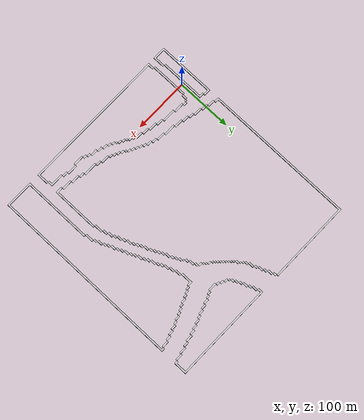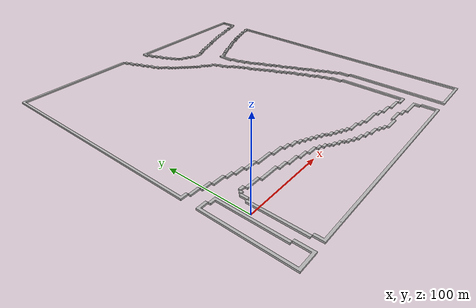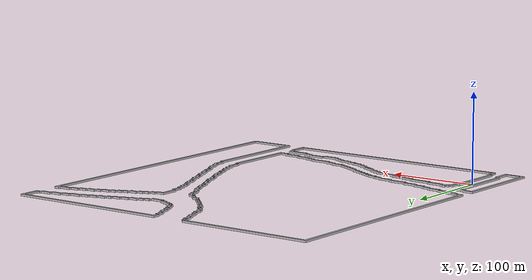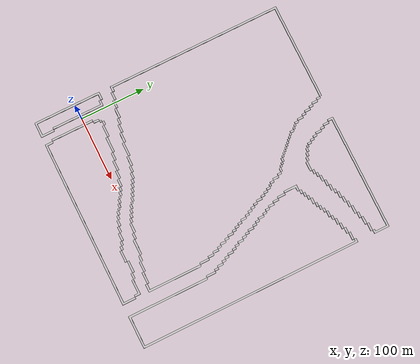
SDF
<?xml version='1.0'?>
<sdf version='1.5'>
  <model name='sample_1'>
    <static>1</static>
    <pose>0 0 0 0 0 0</pose>
    <link name='link'>
	<collision name="collision">
        	<geometry>
         		<mesh><uri>file://sample_1/meshes/map.stl</uri></mesh>
        	</geometry>
      	</collision>
      <visual name='visual'>
        <geometry>
            <mesh><uri>file://sample_1/meshes/map.stl</uri></mesh>
        </geometry>
      </visual>
    </link>
  </model>
</sdf>
